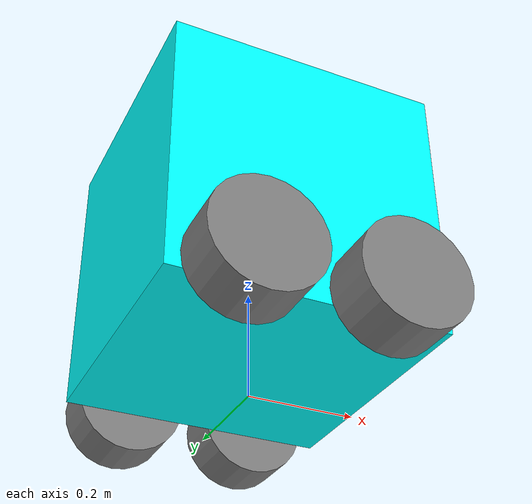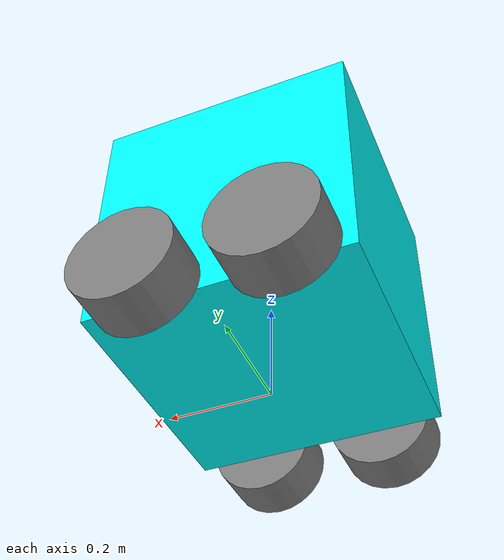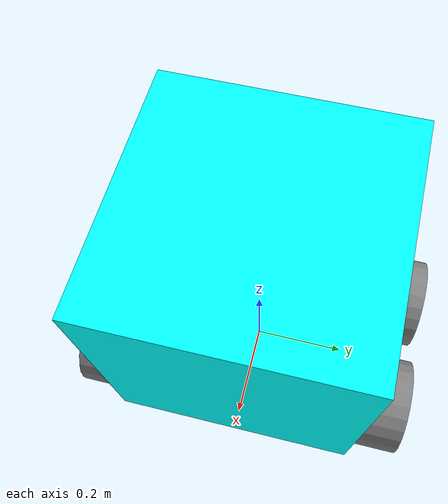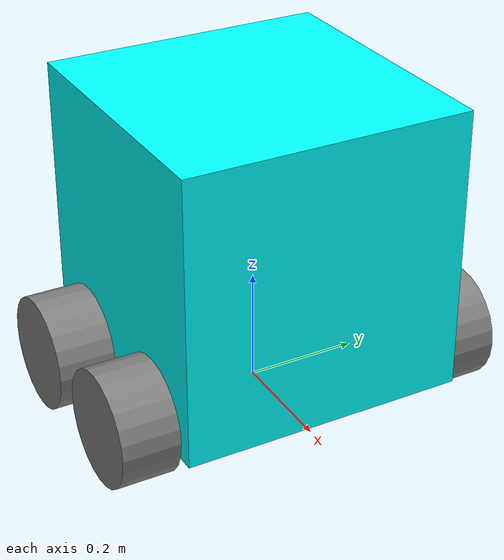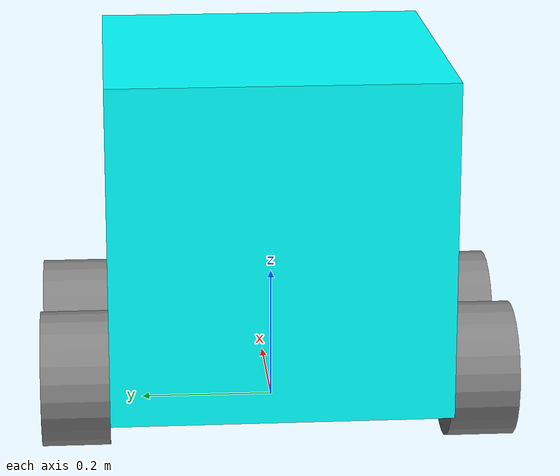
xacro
<?xml version="1.0" ?>
<!-- |    This document was autogenerated by xacro from /home/adenm/sec_test_dev_ws/install/sec_description/share/sec_description/description/sec_description.urdf.xacro | -->
<!-- |    EDITING THIS FILE BY HAND IS NOT RECOMMENDED                                 | -->
<robot name="sec_bot">
	<!-- Specify some standard inertial calculations https://en.wikipedia.org/wiki/List_of_moments_of_inertia -->
	<!-- These make use of xacro's mathematical functionality -->
	<!-- Base Footprint -->
	<link name="base_link">

    </link>
	<!-- Robot Base -->
	<link name="chassis">
		<visual>
			<origin rpy="0 0 0" xyz="0 0 0.25"/>
			<geometry>
				<box size="0.5 0.5 0.5"/>
			</geometry>
			<material name="Cyan">
				<color rgba="0 1.0 1.0 1.0"/>
			</material>
		</visual>
		<collision>
			<origin rpy="0 0 0" xyz="0 0 0.25"/>
			<geometry>
				<box size="0.5 0.5 0.5"/>
			</geometry>
		</collision>
		<inertial>
			<origin rpy="0 0 0" xyz="0 0 0.25"/>
			<mass value="10"/>
			<inertia ixx="0.41666666666666663" ixy="0.0" ixz="0.0" iyy="0.41666666666666663" iyz="0.0" izz="0.41666666666666663"/>
		</inertial>
	</link>
	<joint name="base_joint" type="fixed">
		<parent link="base_link"/>
		<child link="chassis"/>
		<origin rpy="0 0 0" xyz="0.0 0.0 0.05"/>
	</joint>
	<link name="b_l_wheel_link">
		<visual>
			<origin rpy="1.5707963267948966 0 0" xyz="0 0 0"/>
			<geometry>
				<cylinder length="0.1" radius="0.1"/>
			</geometry>
			<material name="Gray">
				<color rgba="0.5 0.5 0.5 1.0"/>
			</material>
		</visual>
		<collision>
			<origin rpy="1.5707963267948966 0 0" xyz="0 0 0"/>
			<geometry>
				<cylinder length="0.1" radius="0.1"/>
			</geometry>
		</collision>
		<inertial>
			<origin rpy="1.5707963267948966 0 0" xyz="0 0 0"/>
			<mass value="10"/>
			<inertia ixx="0.03333333333333334" ixy="0.0" ixz="0.0" iyy="0.03333333333333334" iyz="0.0" izz="0.05000000000000001"/>
		</inertial>
	</link>
	<joint name="b_l_wheel_joint" type="continuous">
		<parent link="chassis"/>
		<child link="b_l_wheel_link"/>
		<origin rpy="0 0 0" xyz="-0.125 0.3 0.03"/>
		<axis xyz="0 1 0"/>
	</joint>
	<gazebo reference="b_l_wheel_link">
		<material>Gazebo/Blue</material>
	</gazebo>
	<link name="b_r_wheel_link">
		<visual>
			<origin rpy="1.5707963267948966 0 0" xyz="0 0 0"/>
			<geometry>
				<cylinder length="0.1" radius="0.1"/>
			</geometry>
			<material name="Gray">
				<color rgba="0.5 0.5 0.5 1.0"/>
			</material>
		</visual>
		<collision>
			<origin rpy="1.5707963267948966 0 0" xyz="0 0 0"/>
			<geometry>
				<cylinder length="0.1" radius="0.1"/>
			</geometry>
		</collision>
		<inertial>
			<origin rpy="1.5707963267948966 0 0" xyz="0 0 0"/>
			<mass value="10"/>
			<inertia ixx="0.03333333333333334" ixy="0.0" ixz="0.0" iyy="0.03333333333333334" iyz="0.0" izz="0.05000000000000001"/>
		</inertial>
	</link>
	<joint name="b_r_wheel_joint" type="continuous">
		<parent link="chassis"/>
		<child link="b_r_wheel_link"/>
		<origin rpy="0 0 0" xyz="-0.125 -0.3 0.03"/>
		<axis xyz="0 1 0"/>
	</joint>
	<gazebo reference="b_r_wheel_link">
		<material>Gazebo/Blue</material>
	</gazebo>
	<link name="f_l_wheel_link">
		<visual>
			<origin rpy="1.5707963267948966 0 0" xyz="0 0 0"/>
			<geometry>
				<cylinder length="0.1" radius="0.1"/>
			</geometry>
			<material name="Gray">
				<color rgba="0.5 0.5 0.5 1.0"/>
			</material>
		</visual>
		<collision>
			<origin rpy="1.5707963267948966 0 0" xyz="0 0 0"/>
			<geometry>
				<cylinder length="0.1" radius="0.1"/>
			</geometry>
		</collision>
		<inertial>
			<origin rpy="1.5707963267948966 0 0" xyz="0 0 0"/>
			<mass value="10"/>
			<inertia ixx="0.03333333333333334" ixy="0.0" ixz="0.0" iyy="0.03333333333333334" iyz="0.0" izz="0.05000000000000001"/>
		</inertial>
	</link>
	<joint name="f_l_wheel_joint" type="continuous">
		<parent link="chassis"/>
		<child link="f_l_wheel_link"/>
		<origin rpy="0 0 0" xyz="0.125 0.3 0.03"/>
		<axis xyz="0 1 0"/>
	</joint>
	<gazebo reference="f_l_wheel_link">
		<material>Gazebo/Blue</material>
	</gazebo>
	<link name="f_r_wheel_link">
		<visual>
			<origin rpy="1.5707963267948966 0 0" xyz="0 0 0"/>
			<geometry>
				<cylinder length="0.1" radius="0.1"/>
			</geometry>
			<material name="Gray">
				<color rgba="0.5 0.5 0.5 1.0"/>
			</material>
		</visual>
		<collision>
			<origin rpy="1.5707963267948966 0 0" xyz="0 0 0"/>
			<geometry>
				<cylinder length="0.1" radius="0.1"/>
			</geometry>
		</collision>
		<inertial>
			<origin rpy="1.5707963267948966 0 0" xyz="0 0 0"/>
			<mass value="10"/>
			<inertia ixx="0.03333333333333334" ixy="0.0" ixz="0.0" iyy="0.03333333333333334" iyz="0.0" izz="0.05000000000000001"/>
		</inertial>
	</link>
	<joint name="f_r_wheel_joint" type="continuous">
		<parent link="chassis"/>
		<child link="f_r_wheel_link"/>
		<origin rpy="0 0 0" xyz="0.125 -0.3 0.03"/>
		<axis xyz="0 1 0"/>
	</joint>
	<gazebo reference="f_r_wheel_link">
		<material>Gazebo/Blue</material>
	</gazebo>
	<gazebo>
		<plugin filename="libgazebo_ros_diff_drive.so" name="four_wheeled_robot_diff_drive">
			<!-- Number of wheel pairs -->
			<num_wheel_pairs>2</num_wheel_pairs>
			<!-- wheels0 -->
			<left_joint>f_l_wheel_joint</left_joint>
			<right_joint>f_r_wheel_joint</right_joint>
			<!-- wheels1-->
			<left_joint>b_l_wheel_joint</left_joint>
			<right_joint>b_r_wheel_joint</right_joint>
			<!-- kinematics -->
			<wheel_separation>&quot;0.5&quot;</wheel_separation>
			<wheel_separation>&quot;0.5&quot;</wheel_separation>
			<wheel_diameter>0.2</wheel_diameter>
			<wheel_diameter>0.2</wheel_diameter>
			<!-- limits -->
			<max_wheel_torque>200</max_wheel_torque>
			<max_wheel_acceleration>10.0</max_wheel_acceleration>
			<!-- output -->
			<publish_odom>true</publish_odom>
			<publish_odom_tf>true</publish_odom_tf>
			<publish_wheel_tf>true</publish_wheel_tf>
			<odometry_frame>odom</odometry_frame>
			<robot_base_frame>chassis</robot_base_frame>
		</plugin>
	</gazebo>
</robot>
